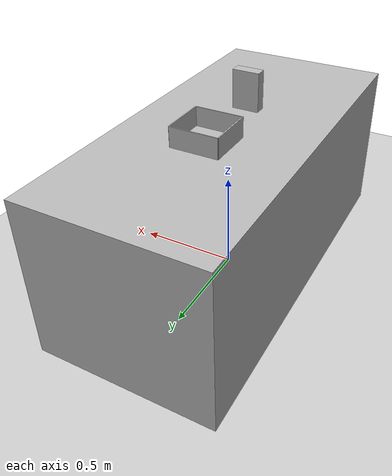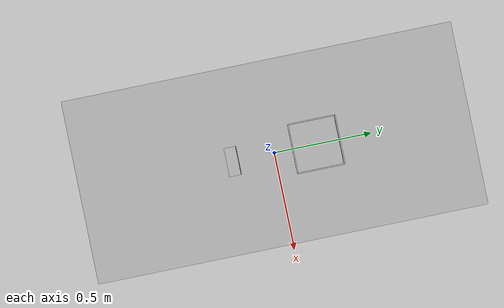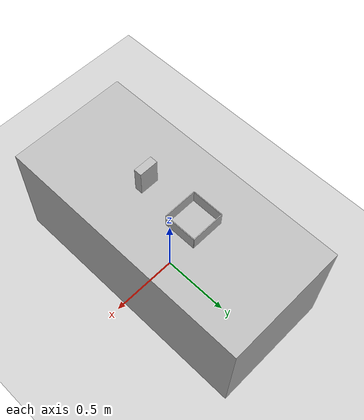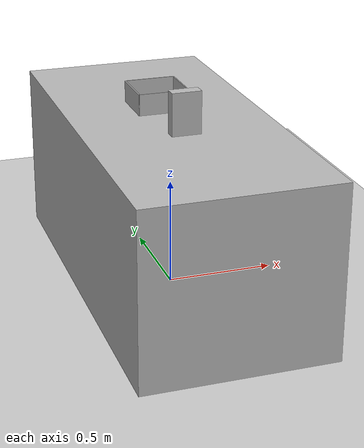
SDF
<?xml version="1.0" ?>
<sdf version="1.4">
  <world name="default">
    <include>
      <uri>model://ground_plane</uri>
    </include>
    <include>
      <uri>model://sun</uri>
    </include>
    <include>
      <uri>model://panda_table</uri>
      <name>table</name>
      <pose>0.0 0.0 0 0 0 0</pose>
    </include>
    <include>
      <uri>model://box</uri>
      <name>box</name>
      <pose>0.0 0.2 0.8 0 0 0</pose>
    </include>
    <include>
      <uri>model://rice_box</uri>
      <name>rice_box</name>
      <pose>0.0 -0.2 0.8 0 0 0</pose>
    </include>
  </world>
</sdf>

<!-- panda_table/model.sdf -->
<sdf version="1.4">
  <model name="panda_table">
    <static>true</static>
    <link name="link">
      <pose>0 0 0.4 0 0 0</pose>
      <collision name="collision">
        <geometry>
          <box>
            <size>0.88 1.88 0.8</size>
          </box>
        </geometry>
      </collision>
      <visual name="visual">
        <geometry>
          <box>
            <size>0.88 1.88 0.8</size>
          </box>
        </geometry>
      </visual>
    </link>
  </model>
</sdf>

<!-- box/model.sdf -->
<sdf version="1.4">
  <model name="cardboard_box">
    <static>false</static>
    <link name="link">
      <inertial>
        <mass>1.0</mass>
        <inertia> <!-- inertias are tricky to compute -->
          <!-- http://gazebosim.org/tutorials?tut=inertia&cat=build_robot -->
          <ixx>0.083</ixx>       <!-- for a box: ixx = 0.083 * mass * (y*y + z*z) -->
          <ixy>0.0</ixy>         <!-- for a box: ixy = 0 -->
          <ixz>0.0</ixz>         <!-- for a box: ixz = 0 -->
          <iyy>0.083</iyy>       <!-- for a box: iyy = 0.083 * mass * (x*x + z*z) -->
          <iyz>0.0</iyz>         <!-- for a box: iyz = 0 -->
          <izz>0.083</izz>       <!-- for a box: izz = 0.083 * mass * (x*x + y*y) -->
        </inertia>
      </inertial>
      <collision name="collision1">
        <geometry>
          <box>
            <size>0.235 0.225 0.005</size>
          </box>
        </geometry>
        <pose>0 0 0.0025 0 0 0</pose>
      </collision>
      <visual name="visual1">
        <geometry>
          <box>
            <size>0.235 0.225 0.005</size>
          </box>
        </geometry>
        <pose>0 0 0.0025 0 0 0</pose>
      </visual>
      <collision name="collision2">
        <geometry>
          <box>
            <size>0.005 0.225 0.1</size>
          </box>
        </geometry>
        <pose>0.1175 0 0.05 0 0 0</pose>
      </collision>
      <visual name="visual2">
        <geometry>
          <box>
            <size>0.005 0.225 0.1</size>
          </box>
        </geometry>
        <pose>0.1175 0 0.05 0 0 0</pose>
      </visual>
      <collision name="collision3">
        <geometry>
          <box>
            <size>0.005 0.225 0.1</size>
          </box>
        </geometry>
        <pose>-0.1175 0 0.05 0 0 0</pose>
      </collision>
      <visual name="visual3">
        <geometry>
          <box>
            <size>0.005 0.225 0.1</size>
          </box>
        </geometry>
        <pose>-0.1175 0 0.05 0 0 0</pose>
      </visual>
      <collision name="collision4">
        <geometry>
          <box>
            <size>0.235 0.005 0.1</size>
          </box>
        </geometry>
        <pose>0 0.1125 0.05 0 0 0</pose>
      </collision>
      <visual name="visual4">
        <geometry>
          <box>
            <size>0.235 0.005 0.1</size>
          </box>
        </geometry>
        <pose>0 0.1125 0.05 0 0 0</pose>
      </visual>
      <collision name="collision5">
        <geometry>
          <box>
            <size>0.235 0.005 0.1</size>
          </box>
        </geometry>
         <pose>0 -0.1125 0.05 0 0 0</pose>
      </collision>
      <visual name="visual5">
        <geometry>
          <box>
            <size>0.235 0.005 0.1</size>
          </box>
        </geometry>
         <pose>0 -0.1125 0.05 0 0 0</pose>
      </visual>
    </link>
  </model>
</sdf>

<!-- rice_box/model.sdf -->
<sdf version="1.4">
  <model name="cardboard_box">
    <static>false</static>
    <link name="link">
    <pose>0 0 0.0975 0 0 0</pose>
      <inertial>
        <mass>1.0</mass>
        <inertia> <!-- inertias are tricky to compute -->
          <!-- http://gazebosim.org/tutorials?tut=inertia&cat=build_robot -->
          <ixx>0.083</ixx>       <!-- for a box: ixx = 0.083 * mass * (y*y + z*z) -->
          <ixy>0.0</ixy>         <!-- for a box: ixy = 0 -->
          <ixz>0.0</ixz>         <!-- for a box: ixz = 0 -->
          <iyy>0.083</iyy>       <!-- for a box: iyy = 0.083 * mass * (x*x + z*z) -->
          <iyz>0.0</iyz>         <!-- for a box: iyz = 0 -->
          <izz>0.083</izz>       <!-- for a box: izz = 0.083 * mass * (x*x + y*y) -->
        </inertia>
      </inertial>
      <collision name="collision">
        <geometry>
          <box>
            <size>0.135 0.055 0.195</size>
          </box>
        </geometry>
      </collision>
      <visual name="visual">
        <geometry>
          <box>
            <size>0.135 0.055 0.195</size>
          </box>
        </geometry>
      </visual>
    </link>
  </model>
</sdf>
